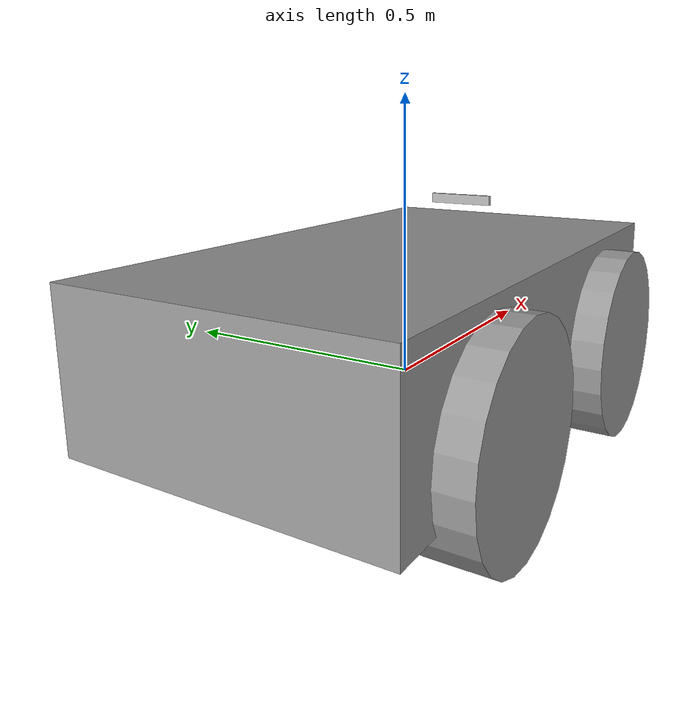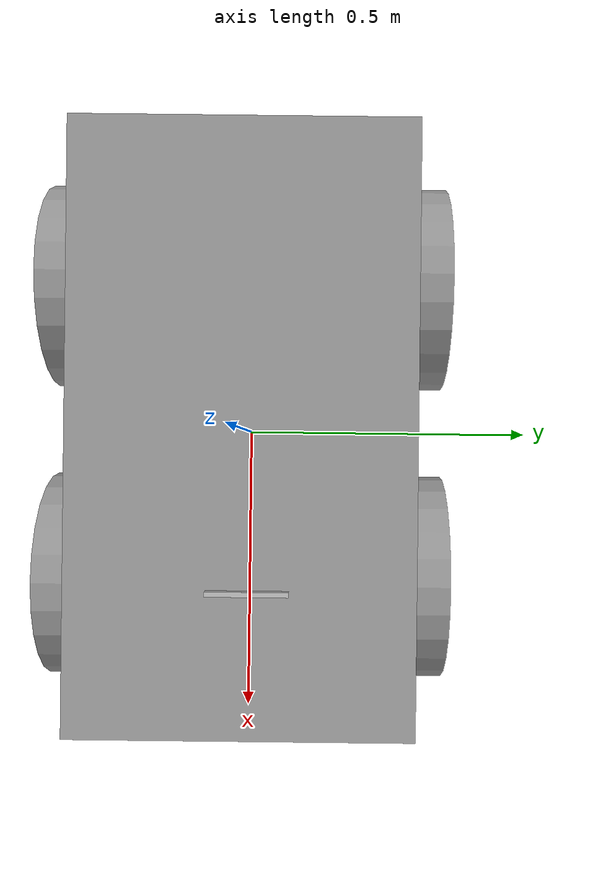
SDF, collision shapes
<?xml version='1.0'?>
<sdf version='1.6'>
  <model name='new_husky'>
    <link name='back_left_wheel'>
      <pose frame=''>-0.256 0.285475 0.035 0 -0 0</pose>
      <inertial>
        <mass>2.6357</mass>
        <pose frame=''>0 0 0 0 -0 0</pose>
        <inertia>
          <ixx>0.0246688</ixx>
          <ixy>0</ixy>
          <ixz>0</ixz>
          <iyy>0.0246688</iyy>
          <iyz>0</iyz>
          <izz>0.0441058</izz>
        </inertia>
      </inertial>
      <self_collide>0</self_collide>
      <enable_wind>0</enable_wind>
      <kinematic>0</kinematic>
      <visual name='back_left_wheel'>
        <pose frame=''>0 0 0 -3.14159 0 0</pose>
        <geometry>
          <mesh>
            <uri>model://husky/meshes/wheel.stl</uri>
          </mesh>
        </geometry>
        <material>
          <script>
            <name>Gazebo/Grey</name>
            <uri>__default__</uri>
          </script>
          <shader type='pixel'/>
        </material>
        <transparency>0</transparency>
        <cast_shadows>1</cast_shadows>
      </visual>
      <collision name='back_left_wheel_collision'>
        <laser_retro>0</laser_retro>
        <max_contacts>10</max_contacts>
        <pose frame=''>0 0 0 -1.5707 0 0</pose>
        <geometry>
          <cylinder>
            <radius>0.17775</radius>
            <length>0.1143</length>
          </cylinder>
        </geometry>
        <surface>
          <friction>
            <ode>
              <mu>100</mu>
              <mu2>100</mu2>
              <fdir1>0 0 0</fdir1>
              <slip1>0</slip1>
              <slip2>0</slip2>
            </ode>
            <torsional>
              <coefficient>1</coefficient>
              <patch_radius>0</patch_radius>
              <surface_radius>0</surface_radius>
              <use_patch_radius>1</use_patch_radius>
              <ode>
                <slip>0</slip>
              </ode>
            </torsional>
          </friction>
          <bounce>
            <restitution_coefficient>0</restitution_coefficient>
            <threshold>1e+06</threshold>
          </bounce>
          <contact>
            <collide_without_contact>0</collide_without_contact>
            <collide_without_contact_bitmask>1</collide_without_contact_bitmask>
            <collide_bitmask>1</collide_bitmask>
            <ode>
              <soft_cfm>0</soft_cfm>
              <soft_erp>0.2</soft_erp>
              <kp>1e+13</kp>
              <kd>1</kd>
              <max_vel>0.01</max_vel>
              <min_depth>0</min_depth>
            </ode>
            <bullet>
              <split_impulse>1</split_impulse>
              <split_impulse_penetration_threshold>-0.01</split_impulse_penetration_threshold>
              <soft_cfm>0</soft_cfm>
              <soft_erp>0.2</soft_erp>
              <kp>1e+13</kp>
              <kd>1</kd>
            </bullet>
          </contact>
        </surface>
      </collision>
    </link>
    <link name='back_right_wheel'>
      <pose frame=''>-0.256 -0.285475 0.035 0 -0 0</pose>
      <inertial>
        <mass>2.6357</mass>
        <pose frame=''>0 0 0 0 -0 0</pose>
        <inertia>
          <ixx>0.0246688</ixx>
          <ixy>0</ixy>
          <ixz>0</ixz>
          <iyy>0.0246688</iyy>
          <iyz>0</iyz>
          <izz>0.0441058</izz>
        </inertia>
      </inertial>
      <self_collide>0</self_collide>
      <enable_wind>0</enable_wind>
      <kinematic>0</kinematic>
      <visual name='back_right_wheel'>
        <pose frame=''>0 0 0 -3.14159 0 0</pose>
        <geometry>
          <mesh>
            <uri>model://husky/meshes/wheel.stl</uri>
          </mesh>
        </geometry>
        <material>
          <script>
            <name>Gazebo/Grey</name>
            <uri>__default__</uri>
          </script>
          <shader type='pixel'/>
          <emissive>0 0 0 1</emissive>
        </material>
        <transparency>0</transparency>
        <cast_shadows>1</cast_shadows>
      </visual>
      <collision name='back_right_wheel_collision'>
        <laser_retro>0</laser_retro>
        <max_contacts>10</max_contacts>
        <pose frame=''>0 0 0 -1.5707 0 0</pose>
        <geometry>
          <cylinder>
            <radius>0.17775</radius>
            <length>0.1143</length>
          </cylinder>
        </geometry>
        <surface>
          <friction>
            <ode>
              <mu>100</mu>
              <mu2>100</mu2>
              <fdir1>0 0 0</fdir1>
              <slip1>0</slip1>
              <slip2>0</slip2>
            </ode>
            <torsional>
              <coefficient>1</coefficient>
              <patch_radius>0</patch_radius>
              <surface_radius>0</surface_radius>
              <use_patch_radius>1</use_patch_radius>
              <ode>
                <slip>0</slip>
              </ode>
            </torsional>
          </friction>
          <bounce>
            <restitution_coefficient>0</restitution_coefficient>
            <threshold>1e+06</threshold>
          </bounce>
          <contact>
            <collide_without_contact>0</collide_without_contact>
            <collide_without_contact_bitmask>1</collide_without_contact_bitmask>
            <collide_bitmask>1</collide_bitmask>
            <ode>
              <soft_cfm>0</soft_cfm>
              <soft_erp>0.2</soft_erp>
              <kp>1e+13</kp>
              <kd>1</kd>
              <max_vel>0.01</max_vel>
              <min_depth>0</min_depth>
            </ode>
            <bullet>
              <split_impulse>1</split_impulse>
              <split_impulse_penetration_threshold>-0.01</split_impulse_penetration_threshold>
              <soft_cfm>0</soft_cfm>
              <soft_erp>0.2</soft_erp>
              <kp>1e+13</kp>
              <kd>1</kd>
            </bullet>
          </contact>
        </surface>
      </collision>
    </link>
    <link name='base_link'>
      <inertial>
        <mass>33.855</mass>
        <pose frame=''>-0.085613 -0.00084 0.238145 0 -0 0</pose>
        <inertia>
          <ixx>2.2343</ixx>
          <ixy>-0.023642</ixy>
          <ixz>0.275174</ixz>
          <iyy>3.42518</iyy>
          <iyz>0.00239624</iyz>
          <izz>2.1241</izz>
        </inertia>
      </inertial>
      <self_collide>0</self_collide>
      <enable_wind>0</enable_wind>
      <kinematic>0</kinematic>
      <pose frame=''>0 0 0 0 -0 0</pose>
      <visual name='user_rail'>
        <pose frame=''>0.272 0 0.245 0 -0 0</pose>
        <geometry>
          <mesh>
            <uri>model://husky/meshes/user_rail.stl</uri>
          </mesh>
        </geometry>
        <material>
          <script>
            <name>Gazebo/Grey</name>
            <uri>__default__</uri>
          </script>
          <shader type='pixel'/>
          <emissive>0 0 0 1</emissive>
        </material>
        <transparency>0</transparency>
        <cast_shadows>1</cast_shadows>
      </visual>
      <visual name='base'>
        <pose frame=''>0 0 0 0 -0 0</pose>
        <geometry>
          <mesh>
            <uri>model://husky/meshes/base_link.stl</uri>
          </mesh>
        </geometry>
        <material>
          <script>
            <name>Gazebo/FlatBlack</name>
            <uri>__default__</uri>
          </script>
          <shader type='pixel'/>
          <emissive>0 0 0 1</emissive>
        </material>
        <transparency>0</transparency>
        <cast_shadows>1</cast_shadows>
      </visual>
      <visual name='top_plate'>
        <pose frame=''>0 0 0 0 -0 0</pose>
        <geometry>
          <mesh>
            <uri>model://husky/meshes/top_plate.stl</uri>
          </mesh>
        </geometry>
        <material>
          <script>
            <name>Gazebo/Yellow</name>
            <uri>__default__</uri>
          </script>
          <shader type='pixel'/>
          <emissive>0 0 0 1</emissive>
        </material>
        <transparency>0</transparency>
        <cast_shadows>1</cast_shadows>
      </visual>
      <visual name='front_bumper'>
        <pose frame=''>0.47 0 0.091 0 -0 0</pose>
        <geometry>
          <mesh>
            <uri>model://husky/meshes/bumper.stl</uri>
          </mesh>
        </geometry>
        <material>
          <script>
            <name>Gazebo/FlatBlack</name>
            <uri>__default__</uri>
          </script>
          <shader type='pixel'/>
          <emissive>0 0 0 1</emissive>
        </material>
        <transparency>0</transparency>
        <cast_shadows>1</cast_shadows>
      </visual>
      <visual name='rear_bumper'>
        <pose frame=''>-0.47 0 0.091 0 -0 3.141</pose>
        <geometry>
          <mesh>
            <uri>model://husky/meshes/bumper.stl</uri>
          </mesh>
        </geometry>
        <material>
          <script>
            <name>Gazebo/FlatBlack</name>
            <uri>__default__</uri>
          </script>
          <shader type='pixel'/>
          <emissive>0 0 0 1</emissive>
        </material>
        <transparency>0</transparency>
        <cast_shadows>1</cast_shadows>
      </visual>
      <collision name='collision'>
        <laser_retro>0</laser_retro>
        <max_contacts>10</max_contacts>
        <pose frame=''>0 0 0.1 0 -0 0</pose>
        <geometry>
          <box>
            <size>1.0074 0.5709 0.2675</size>
          </box>
        </geometry>
        <surface>
          <friction>
            <ode>
              <mu>1</mu>
              <mu2>1</mu2>
              <fdir1>0 0 0</fdir1>
              <slip1>0</slip1>
              <slip2>0</slip2>
            </ode>
            <torsional>
              <coefficient>1</coefficient>
              <patch_radius>0</patch_radius>
              <surface_radius>0</surface_radius>
              <use_patch_radius>1</use_patch_radius>
              <ode>
                <slip>0</slip>
              </ode>
            </torsional>
          </friction>
          <bounce>
            <restitution_coefficient>0</restitution_coefficient>
            <threshold>1e+06</threshold>
          </bounce>
          <contact>
            <collide_without_contact>0</collide_without_contact>
            <collide_without_contact_bitmask>1</collide_without_contact_bitmask>
            <collide_bitmask>1</collide_bitmask>
            <ode>
              <soft_cfm>0</soft_cfm>
              <soft_erp>0.2</soft_erp>
              <kp>1e+13</kp>
              <kd>1</kd>
              <max_vel>0.01</max_vel>
              <min_depth>0</min_depth>
            </ode>
            <bullet>
              <split_impulse>1</split_impulse>
              <split_impulse_penetration_threshold>-0.01</split_impulse_penetration_threshold>
              <soft_cfm>0</soft_cfm>
              <soft_erp>0.2</soft_erp>
              <kp>1e+13</kp>
              <kd>1</kd>
            </bullet>
          </contact>
        </surface>
      </collision>
    </link>
    <link name='front_left_wheel'>
      <pose frame=''>0.256 0.285475 0.035 0 -0 0</pose>
      <inertial>
        <mass>2.6357</mass>
        <pose frame=''>0 0 0 0 -0 0</pose>
        <inertia>
          <ixx>0.0246688</ixx>
          <ixy>0</ixy>
          <ixz>0</ixz>
          <iyy>0.0246688</iyy>
          <iyz>0</iyz>
          <izz>0.0441058</izz>
        </inertia>
      </inertial>
      <self_collide>0</self_collide>
      <enable_wind>0</enable_wind>
      <kinematic>0</kinematic>
      <visual name='front_left_wheel'>
        <pose frame=''>0 0 0 -3.14159 0 0</pose>
        <geometry>
          <mesh>
            <uri>model://husky/meshes/wheel.stl</uri>
          </mesh>
        </geometry>
        <material>
          <script>
            <name>Gazebo/Grey</name>
            <uri>__default__</uri>
          </script>
          <shader type='pixel'/>
        </material>
        <transparency>0</transparency>
        <cast_shadows>1</cast_shadows>
      </visual>
      <collision name='front_left_wheel_collision'>
        <laser_retro>0</laser_retro>
        <max_contacts>10</max_contacts>
        <pose frame=''>0 0 0 -1.5707 0 0</pose>
        <geometry>
          <cylinder>
            <radius>0.17775</radius>
            <length>0.1143</length>
          </cylinder>
        </geometry>
        <surface>
          <friction>
            <ode>
              <mu>100</mu>
              <mu2>100</mu2>
              <fdir1>0 0 0</fdir1>
              <slip1>0</slip1>
              <slip2>0</slip2>
            </ode>
            <torsional>
              <coefficient>1</coefficient>
              <patch_radius>0</patch_radius>
              <surface_radius>0</surface_radius>
              <use_patch_radius>1</use_patch_radius>
              <ode>
                <slip>0</slip>
              </ode>
            </torsional>
          </friction>
          <bounce>
            <restitution_coefficient>0</restitution_coefficient>
            <threshold>1e+06</threshold>
          </bounce>
          <contact>
            <collide_without_contact>0</collide_without_contact>
            <collide_without_contact_bitmask>1</collide_without_contact_bitmask>
            <collide_bitmask>1</collide_bitmask>
            <ode>
              <soft_cfm>0</soft_cfm>
              <soft_erp>0.2</soft_erp>
              <kp>1e+13</kp>
              <kd>1</kd>
              <max_vel>0.01</max_vel>
              <min_depth>0</min_depth>
            </ode>
            <bullet>
              <split_impulse>1</split_impulse>
              <split_impulse_penetration_threshold>-0.01</split_impulse_penetration_threshold>
              <soft_cfm>0</soft_cfm>
              <soft_erp>0.2</soft_erp>
              <kp>1e+13</kp>
              <kd>1</kd>
            </bullet>
          </contact>
        </surface>
      </collision>
    </link>
    <link name='front_right_wheel'>
      <pose frame=''>0.256 -0.285475 0.035 0 -0 0</pose>
      <inertial>
        <mass>2.6357</mass>
        <pose frame=''>0 0 0 0 -0 0</pose>
        <inertia>
          <ixx>0.0246688</ixx>
          <ixy>0</ixy>
          <ixz>0</ixz>
          <iyy>0.0246688</iyy>
          <iyz>0</iyz>
          <izz>0.0441058</izz>
        </inertia>
      </inertial>
      <self_collide>0</self_collide>
      <enable_wind>0</enable_wind>
      <kinematic>0</kinematic>
      <visual name='front_right_wheel'>
        <pose frame=''>0 0 0 -3.14159 0 0</pose>
        <geometry>
          <mesh>
            <uri>model://husky/meshes/wheel.stl</uri>
          </mesh>
        </geometry>
        <material>
          <script>
            <name>Gazebo/Grey</name>
            <uri>__default__</uri>
          </script>
          <shader type='pixel'/>
          <emissive>0 0 0 1</emissive>
        </material>
        <transparency>0</transparency>
        <cast_shadows>1</cast_shadows>
      </visual>
      <collision name='front_right_wheel_collision'>
        <laser_retro>0</laser_retro>
        <max_contacts>10</max_contacts>
        <pose frame=''>0 0 0 -1.5707 0 0</pose>
        <geometry>
          <cylinder>
            <radius>0.17775</radius>
            <length>0.1143</length>
          </cylinder>
        </geometry>
        <surface>
          <friction>
            <ode>
              <mu>100</mu>
              <mu2>100</mu2>
              <fdir1>0 0 0</fdir1>
              <slip1>0</slip1>
              <slip2>0</slip2>
            </ode>
            <torsional>
              <coefficient>1</coefficient>
              <patch_radius>0</patch_radius>
              <surface_radius>0</surface_radius>
              <use_patch_radius>1</use_patch_radius>
              <ode>
                <slip>0</slip>
              </ode>
            </torsional>
          </friction>
          <bounce>
            <restitution_coefficient>0</restitution_coefficient>
            <threshold>1e+06</threshold>
          </bounce>
          <contact>
            <collide_without_contact>0</collide_without_contact>
            <collide_without_contact_bitmask>1</collide_without_contact_bitmask>
            <collide_bitmask>1</collide_bitmask>
            <ode>
              <soft_cfm>0</soft_cfm>
              <soft_erp>0.2</soft_erp>
              <kp>1e+13</kp>
              <kd>1</kd>
              <max_vel>0.01</max_vel>
              <min_depth>0</min_depth>
            </ode>
            <bullet>
              <split_impulse>1</split_impulse>
              <split_impulse_penetration_threshold>-0.01</split_impulse_penetration_threshold>
              <soft_cfm>0</soft_cfm>
              <soft_erp>0.2</soft_erp>
              <kp>1e+13</kp>
              <kd>1</kd>
            </bullet>
          </contact>
        </surface>
      </collision>
    </link>
    <model name='realsense_camera'>
      <plugin name='realsense_plugin' filename='librealsense_gazebo_plugin.so'/>
      <static>0</static>
      <pose frame=''>0.258342 0.01574 0.292363 0 0 0</pose>
      <link name='link'>
        <inertial>
          <mass>0.0615752</mass>
          <inertia>
            <ixx>9.108e-05</ixx>
            <ixy>0</ixy>
            <ixz>0</ixz>
            <iyy>2.51e-06</iyy>
            <iyz>0</iyz>
            <izz>8.931e-05</izz>
          </inertia>
          <pose frame=''>0 0 0 0 -0 0</pose>
        </inertial>
        <self_collide>0</self_collide>
        <enable_wind>0</enable_wind>
        <kinematic>0</kinematic>
        <gravity>1</gravity>
        <visual name='visual'>
          <geometry>
            <mesh>
              <uri>model://realsense_camera/meshes/realsense.dae</uri>
            </mesh>
          </geometry>
        </visual>
        <collision name='collision'>
          <laser_retro>0</laser_retro>
          <max_contacts>10</max_contacts>
          <pose frame=''>0 0 0 0 -0 0</pose>
          <geometry>
            <box>
              <size>0.0078 0.13 0.0192</size>
            </box>
          </geometry>
          <surface>
            <friction>
              <ode>
                <mu>1</mu>
                <mu2>1</mu2>
                <fdir1>0 0 0</fdir1>
                <slip1>0</slip1>
                <slip2>0</slip2>
              </ode>
              <torsional>
                <coefficient>1</coefficient>
                <patch_radius>0</patch_radius>
                <surface_radius>0</surface_radius>
                <use_patch_radius>1</use_patch_radius>
                <ode>
                  <slip>0</slip>
                </ode>
              </torsional>
            </friction>
            <bounce>
              <restitution_coefficient>0</restitution_coefficient>
              <threshold>1e+06</threshold>
            </bounce>
            <contact>
              <collide_without_contact>0</collide_without_contact>
              <collide_without_contact_bitmask>1</collide_without_contact_bitmask>
              <collide_bitmask>1</collide_bitmask>
              <ode>
                <soft_cfm>0</soft_cfm>
                <soft_erp>0.2</soft_erp>
                <kp>1e+13</kp>
                <kd>1</kd>
                <max_vel>0.01</max_vel>
                <min_depth>0</min_depth>
              </ode>
              <bullet>
                <split_impulse>1</split_impulse>
                <split_impulse_penetration_threshold>-0.01</split_impulse_penetration_threshold>
                <soft_cfm>0</soft_cfm>
                <soft_erp>0.2</soft_erp>
                <kp>1e+13</kp>
                <kd>1</kd>
              </bullet>
            </contact>
          </surface>
        </collision>
        <sensor name='color' type='camera'>
          <pose frame=''>0 -0.046 0.004 0 -0 0</pose>
          <camera name='__default__'>
            <horizontal_fov>1.047</horizontal_fov>
            <image>
              <width>640</width>
              <height>480</height>
              <format>RGB_INT8</format>
            </image>
            <clip>
              <near>0.1</near>
              <far>100</far>
            </clip>
            <noise>
              <type>gaussian</type>
              <mean>0</mean>
              <stddev>0.007</stddev>
            </noise>
          </camera>
          <always_on>1</always_on>
          <update_rate>60</update_rate>
          <visualize>1</visualize>
        </sensor>
        <sensor name='ired1' type='camera'>
          <pose frame=''>0 -0.06 0.004 0 -0 0</pose>
          <camera name='__default__'>
            <horizontal_fov>1.047</horizontal_fov>
            <image>
              <width>640</width>
              <height>480</height>
              <format>L_INT8</format>
            </image>
            <clip>
              <near>0.1</near>
              <far>100</far>
            </clip>
            <noise>
              <type>gaussian</type>
              <mean>0</mean>
              <stddev>0.007</stddev>
            </noise>
          </camera>
          <always_on>1</always_on>
          <update_rate>60</update_rate>
          <visualize>0</visualize>
        </sensor>
        <sensor name='ired2' type='camera'>
          <pose frame=''>0 0.01 0.004 0 -0 0</pose>
          <camera name='__default__'>
            <horizontal_fov>1.047</horizontal_fov>
            <image>
              <width>640</width>
              <height>480</height>
              <format>L_INT8</format>
            </image>
            <clip>
              <near>0.1</near>
              <far>100</far>
            </clip>
            <noise>
              <type>gaussian</type>
              <mean>0</mean>
              <stddev>0.007</stddev>
            </noise>
          </camera>
          <always_on>1</always_on>
          <update_rate>60</update_rate>
          <visualize>0</visualize>
        </sensor>
        <sensor name='depth' type='depth'>
          <pose frame=''>0 -0.03 0.004 0 -0 0</pose>
          <camera name='__default__'>
            <horizontal_fov>1.047</horizontal_fov>
            <image>
              <width>640</width>
              <height>480</height>
            </image>
            <clip>
              <near>0.1</near>
              <far>100</far>
            </clip>
            <noise>
              <type>gaussian</type>
              <mean>0</mean>
              <stddev>0.007</stddev>
            </noise>
          </camera>
          <plugin name="camera_plugin" filename="libgazebo_ros_openni_kinect.so">
            <baseline>0.2</baseline>
            <alwaysOn>true</alwaysOn>
            <updateRate>0.0</updateRate>
            <cameraName>camera_ir</cameraName>
            <imageTopicName>/camera/color/image_raw</imageTopicName>
            <cameraInfoTopicName>/camera/color/camera_info</cameraInfoTopicName>
            <depthImageTopicName>/camera/depth/image_raw</depthImageTopicName>
            <depthImageCameraInfoTopicName>/camera/depth/camera_info</depthImageCameraInfoTopicName>
            <pointCloudTopicName>/camera/depth/points</pointCloudTopicName>
            <frameName>camera_link</frameName>
            <pointCloudCutoff>0.5</pointCloudCutoff>
            <pointCloudCutoffMax>3.0</pointCloudCutoffMax>
            <distortionK1>0</distortionK1>
            <distortionK2>0</distortionK2>
            <distortionK3>0</distortionK3>
            <distortionT1>0</distortionT1>
            <distortionT2>0</distortionT2>
            <CxPrime>0</CxPrime>
            <Cx>0</Cx>
            <Cy>0</Cy>
            <focalLength>0</focalLength>
            <hackBaseline>0</hackBaseline>
          </plugin>
        </sensor>
      </link>
    </model>
    <joint name='back_left_joint' type='revolute'>
      <parent>base_link</parent>
      <child>back_left_wheel</child>
      <pose frame=''>0 0 0 0 -0 0</pose>
      <axis>
        <xyz>0 1 0</xyz>
        <use_parent_model_frame>1</use_parent_model_frame>
        <limit>
          <lower>-1e+16</lower>
          <upper>1e+16</upper>
          <effort>-1</effort>
          <velocity>-1</velocity>
        </limit>
        <dynamics>
          <spring_reference>0</spring_reference>
          <spring_stiffness>0</spring_stiffness>
          <damping>0</damping>
          <friction>0</friction>
        </dynamics>
      </axis>
      <physics>
        <ode>
          <limit>
            <cfm>0</cfm>
            <erp>0.9</erp>
          </limit>
          <suspension>
            <cfm>0</cfm>
            <erp>0.2</erp>
          </suspension>
        </ode>
      </physics>
    </joint>
    <joint name='back_right_joint' type='revolute'>
      <parent>base_link</parent>
      <child>back_right_wheel</child>
      <pose frame=''>0 0 0 0 -0 0</pose>
      <axis>
        <xyz>0 1 0</xyz>
        <use_parent_model_frame>1</use_parent_model_frame>
        <limit>
          <lower>-1e+16</lower>
          <upper>1e+16</upper>
          <effort>-1</effort>
          <velocity>-1</velocity>
        </limit>
        <dynamics>
          <spring_reference>0</spring_reference>
          <spring_stiffness>0</spring_stiffness>
          <damping>0</damping>
          <friction>0</friction>
        </dynamics>
      </axis>
      <physics>
        <ode>
          <limit>
            <cfm>0</cfm>
            <erp>0.9</erp>
          </limit>
          <suspension>
            <cfm>0</cfm>
            <erp>0.2</erp>
          </suspension>
        </ode>
      </physics>
    </joint>
    <joint name='base_link_JOINT_0' type='fixed'>
      <parent>base_link</parent>
      <child>realsense_camera::link</child>
      <pose frame=''>0 0 0 0 -0 0</pose>
      <physics>
        <ode>
          <limit>
            <cfm>0</cfm>
            <erp>0.2</erp>
          </limit>
          <suspension>
            <cfm>0</cfm>
            <erp>0.2</erp>
          </suspension>
        </ode>
      </physics>
    </joint>
    <joint name='front_left_joint' type='revolute'>
      <parent>base_link</parent>
      <child>front_left_wheel</child>
      <pose frame=''>0 0 0 0 -0 0</pose>
      <axis>
        <xyz>0 1 0</xyz>
        <use_parent_model_frame>1</use_parent_model_frame>
        <limit>
          <lower>-1e+16</lower>
          <upper>1e+16</upper>
          <effort>-1</effort>
          <velocity>-1</velocity>
        </limit>
        <dynamics>
          <spring_reference>0</spring_reference>
          <spring_stiffness>0</spring_stiffness>
          <damping>0</damping>
          <friction>0</friction>
        </dynamics>
      </axis>
      <physics>
        <ode>
          <limit>
            <cfm>0</cfm>
            <erp>0.9</erp>
          </limit>
          <suspension>
            <cfm>0</cfm>
            <erp>0.2</erp>
          </suspension>
        </ode>
      </physics>
    </joint>
    <joint name='front_right_joint' type='revolute'>
      <parent>base_link</parent>
      <child>front_right_wheel</child>
      <pose frame=''>0 0 0 0 -0 0</pose>
      <axis>
        <xyz>0 1 0</xyz>
        <use_parent_model_frame>1</use_parent_model_frame>
        <limit>
          <lower>-1e+16</lower>
          <upper>1e+16</upper>
          <effort>-1</effort>
          <velocity>-1</velocity>
        </limit>
        <dynamics>
          <spring_reference>0</spring_reference>
          <spring_stiffness>0</spring_stiffness>
          <damping>0</damping>
          <friction>0</friction>
        </dynamics>
      </axis>
      <physics>
        <ode>
          <limit>
            <cfm>0</cfm>
            <erp>0.9</erp>
          </limit>
          <suspension>
            <cfm>0</cfm>
            <erp>0.2</erp>
          </suspension>
        </ode>
      </physics>
    </joint>
    <static>0</static>
    <allow_auto_disable>1</allow_auto_disable>
    <plugin name='gps_controller' filename='libhector_gazebo_ros_gps.so'>
      <alwayson>1</alwayson>
      <updaterate>1.0</updaterate>
      <robotNamespace>/my_husky</robotNamespace>
      <bodyname>base_link</bodyname>
      <topicname>/fix</topicname>
      <velocitytopicname>/fix_velocity</velocitytopicname>
      <drift>5.0 5.0 5.0</drift>
      <gaussiannoise>0.1 0.1 0.1</gaussiannoise>
      <velocitydrift>0 0 0</velocitydrift>
      <velocitygaussiannoise>0.1 0.1 0.1</velocitygaussiannoise>
    </plugin>
    <plugin name='skid_steer_drive_controller' filename='libgazebo_ros_skid_steer_drive.so'>
      <updateRate>100.0</updateRate>
      <robotNamespace>/my_husky</robotNamespace>
      <leftFrontJoint>front_left_joint</leftFrontJoint>
      <rightFrontJoint>front_right_joint</rightFrontJoint>
      <leftRearJoint>back_left_joint</leftRearJoint>
      <rightRearJoint>back_right_joint</rightRearJoint>
      <wheelSeparation>0.5709</wheelSeparation>
      <wheelDiameter>0.3555</wheelDiameter>
      <robotBaseFrame>cam_link</robotBaseFrame>
      <torque>100</torque>
      <topicName>cmd_vel</topicName>
      <commandTopic>cmd_vel</commandTopic>
      <broadcastTF>1</broadcastTF>
    </plugin>
  </model>
</sdf>
